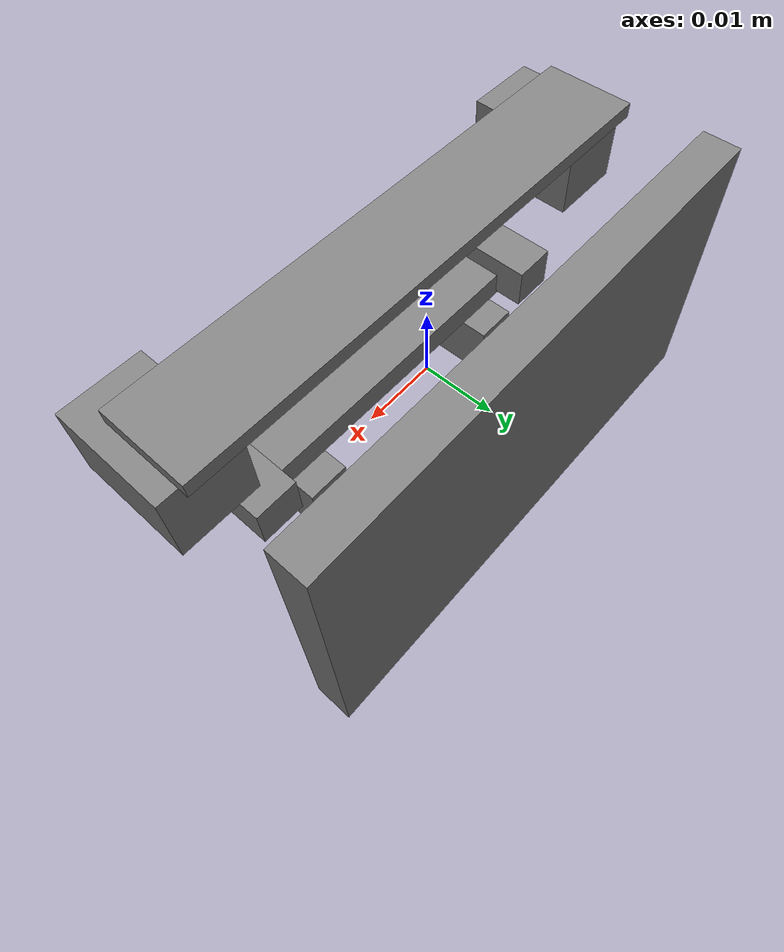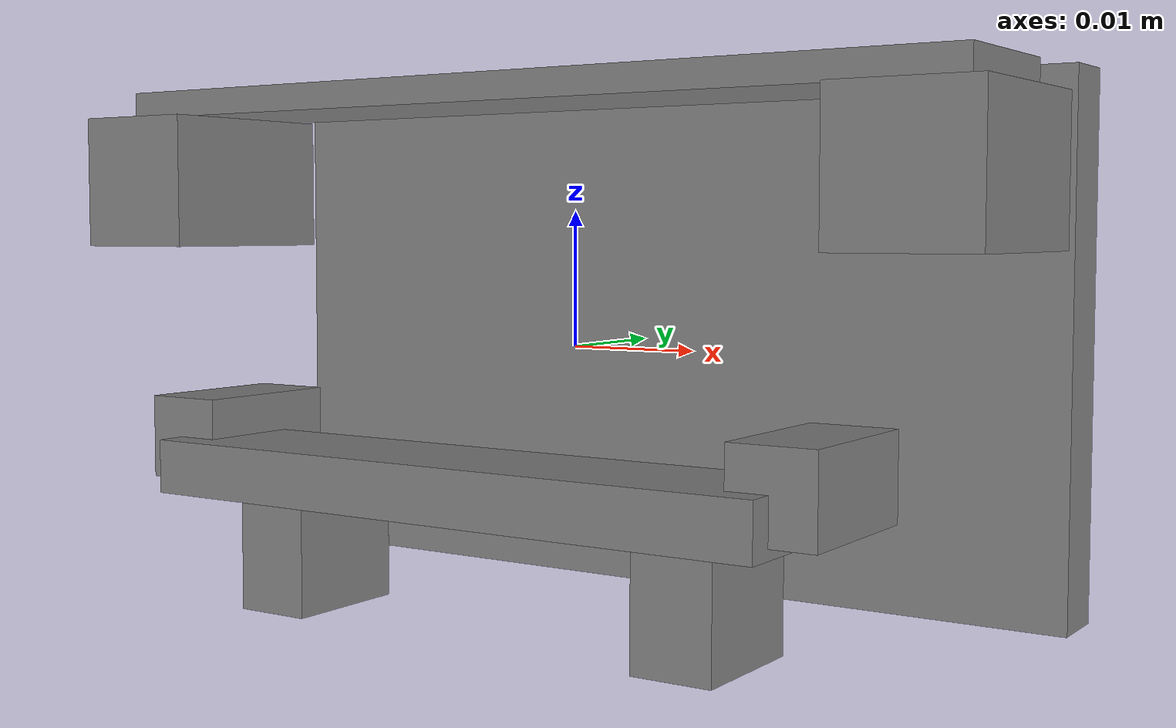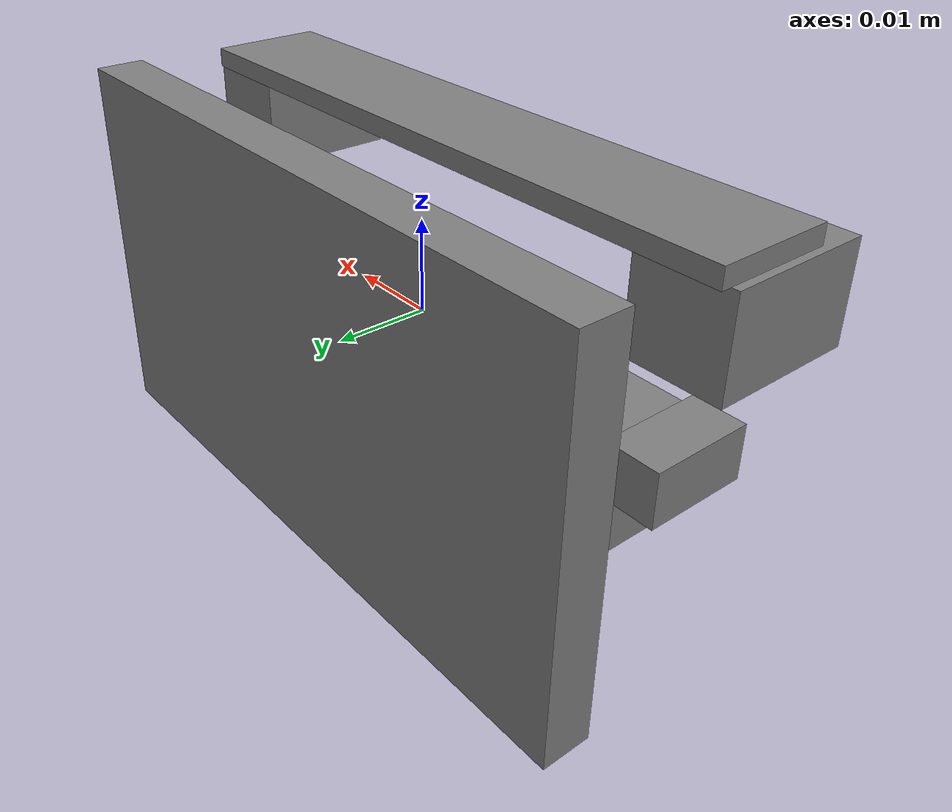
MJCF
--- Generated MuJoCo XML ---
<?xml version="1.0" ?>
<mujoco model="traced_step_part">
    <worldbody>
        <body name="my_link" pos="0 0 0">
            <geom name="cube_0" type="box" size="0.005000 0.007500 0.005000" pos="0.031500 -0.007000 0.012375"/>
            <geom name="cube_1" type="box" size="0.005000 0.007500 0.005000" pos="-0.031500 -0.007000 0.012375"/>
            <geom name="cube_2" type="box" size="0.003125 0.006000 0.003125" pos="0.023625 -0.008750 -0.007250"/>
            <geom name="cube_3" type="box" size="0.003125 0.006000 0.003125" pos="-0.026375 -0.008500 -0.007250"/>
            <geom name="cube_4" type="box" size="0.003000 0.005000 0.004500" pos="0.015750 -0.008000 -0.015625"/>
            <geom name="cube_5" type="box" size="0.003000 0.005000 0.004500" pos="-0.018750 -0.008000 -0.015625"/>
            <geom name="cube_6" type="box" size="0.035000 0.002500 0.020000" pos="-0.001500 0.014250 0.000125"/>
            <geom name="cube_7" type="box" size="0.035000 0.006000 0.001000" pos="-0.001000 -0.004000 0.018625"/>
            <geom name="cube_8" type="box" size="0.025000 0.005000 0.002000" pos="-0.001500 -0.011750 -0.009125"/>
        </body>
    </worldbody>
</mujoco>
